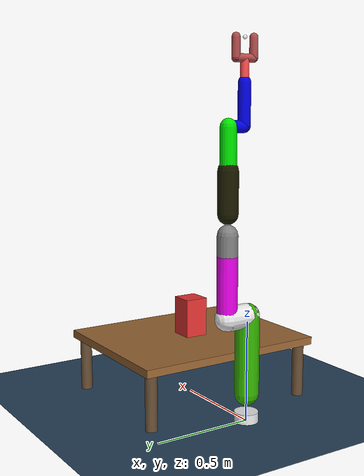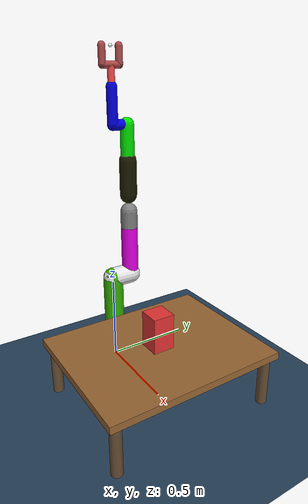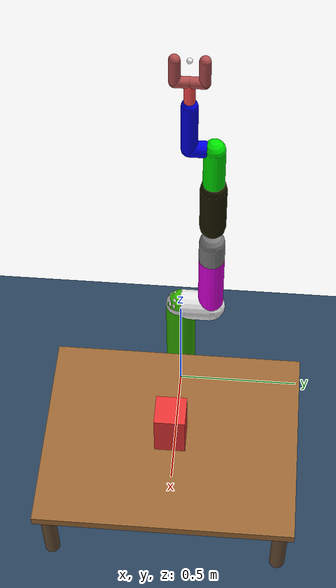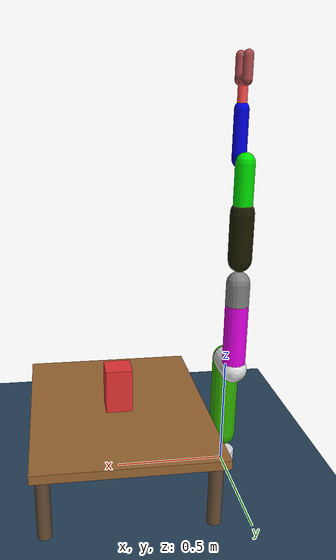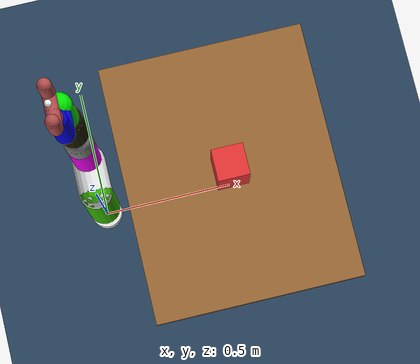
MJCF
<mujoco model="franka_planning">
	<compiler angle="radian"/>
  <option gravity="0 0 -9.81" timestep="0.002">
    <flag contact="enable"/>
  </option>

  <asset>
    <texture name="skybox" type="skybox" builtin="gradient" rgb1=".4 .6 .8" rgb2="0 0 0"
             width="800" height="800"/>
    <texture name="grid" type="2d" builtin="checker" rgb1=".1 .2 .3" rgb2=".2 .3 .4"
             width="300" height="300" mark="edge" markrgb=".2 .3 .4"/>
    <material name="grid" texture="grid" texrepeat="4 4" reflectance=".2"/>
  </asset>

  <worldbody>
    <light pos="0 0 3" dir="0 0 -1" directional="true"/>
    <geom name="floor" type="plane" size="2 2 0.1" material="grid"/>

    <!-- Table -->
    <body name="table" pos="0.5 0 0.3">
      <geom name="tabletop" type="box" size="0.4 0.5 0.02" rgba="0.6 0.4 0.2 1"
            mass="10" contype="1" conaffinity="1"/>
      <geom name="leg1" type="cylinder" fromto="-0.35 -0.45 -0.3 -0.35 -0.45 -0.02"
            size="0.03" rgba="0.4 0.3 0.2 1"/>
      <geom name="leg2" type="cylinder" fromto="0.35 -0.45 -0.3 0.35 -0.45 -0.02"
            size="0.03" rgba="0.4 0.3 0.2 1"/>
      <geom name="leg3" type="cylinder" fromto="-0.35 0.45 -0.3 -0.35 0.45 -0.02"
            size="0.03" rgba="0.4 0.3 0.2 1"/>
      <geom name="leg4" type="cylinder" fromto="0.35 0.45 -0.3 0.35 0.45 -0.02"
            size="0.03" rgba="0.4 0.3 0.2 1"/>
    </body>

    <!-- Obstacle box on the table -->
    <body name="obstacle" pos="0.5 0 0.42">
      <geom name="obstacle_box" type="box" size="0.06 0.06 0.1"
            rgba="0.9 0.2 0.2 1" mass="0.5" contype="1" conaffinity="1"/>
    </body>

    <!-- Franka Panda arm (simplified with primitives) -->
    <body name="link0" pos="0 0 0" euler="0 0 0">
      <geom name="link0_geom" type="cylinder" fromto="0 0 0 0 0 0.05" size="0.06" rgba="0.9 0.9 0.9 1" contype="1" conaffinity="1"/>
      <body name="link1" pos="0 0 0.333">
        <joint name="joint1" type="hinge" axis="0 0 1" range="-2.8973 2.8973" damping="1"/><!-- range="-2.8973 2.8973" -->
        <geom name="link1_geom" type="capsule" fromto="0 0 -0.19 0 0 0.2" size="0.06" rgba="0.2 0.7 0.0 1" contype="1" conaffinity="1"/>
        <body name="link2" pos="0 0 0.2">
			<joint name="joint2" type="hinge" axis="0 1 0" range="-1.7628 1.7628" damping="1"/> <!-- range="-1.7628 1.7628" -->
          <geom name="link2_geom_a" type="capsule" fromto="0 0 0 0 0.12 0" size="0.06" rgba="0.9 0.9 0.9 1" contype="1" conaffinity="1"/>
          <geom name="link2_geom_b" type="capsule" fromto="0 0.12 0 0.0 0.12 0.3" size="0.05" rgba="0.9 0.0 0.9 1" contype="1" conaffinity="1"/>
          <body name="link3" pos="0 0.12 0.3">
            <joint name="joint3" type="hinge" axis="0 0 1" range="-2.8973 2.8973" damping="1"/><!-- range="2.8973 2.8973" -->
            <geom name="link3_geom" type="capsule" fromto="0 0 0 0.0 0 0.1" size="0.05" rgba="0.5 0.5 0.5 1" contype="1" conaffinity="1"/>
            <body name="link4" pos="0.0 0 0.2">
				<joint name="joint4" type="hinge" axis="0 1 0" range="-3.0718 -0.3" damping="1"/> <!-- range="-3.0718 -0.3" -->
              <geom name="link4_geom_a" type="capsule" fromto="0 0 0 0.0 0.0 0.2" size="0.05" rgba="0.1 0.1 0.0 1" contype="1" conaffinity="1"/>
              <body name="link5" pos="0.0 0.0 0.2">
                <joint name="joint5" type="hinge" axis="0 0 1" range="-2.8973 2.8973" damping="1"/><!-- range="2.8973 2.8973" -->
                <geom name="link5_geom" type="capsule" fromto="0 0 0 0 0.0 0.2" size="0.04" rgba="0.0 0.9 0.0 1" contype="1" conaffinity="1"/>
                <body name="link6" pos="0 0.0 0.2">
                  <joint name="joint6" type="hinge" axis="0 1 0" range="-0.8973 0.8973" damping="1"/>
                  <geom name="link6_geom_a" type="capsule" fromto="0 0 0 0 -0.088 0" size="0.03" rgba="0.0 0.0 0.9 1" contype="1" conaffinity="1"/>
                  <geom name="link6_geom_b" type="capsule" fromto="0 -0.088 0 0 -0.088 0.2" size="0.03" rgba="0.0 0.0 0.9 1" contype="1" conaffinity="1"/>
                  <body name="link7" pos="0 -0.088 0.2">
                    <joint name="joint7" type="hinge" axis="0 0 1" range="-0.8973 0.8973" damping="1"/><!-- range="2.8973 2.8973" -->
                    <geom name="link7_geom_a" type="capsule" fromto="0 0 0 0 0 0.107" size="0.02" rgba="1.0 0.3 0.3 1" contype="1" conaffinity="1"/>
                    <geom name="link7_geom_b" type="capsule" fromto="0 -0.05 0.107 0 0.05 0.107" size="0.02" rgba="0.7 0.3 0.3 1" contype="1" conaffinity="1"/>
                    <geom name="link7_geom_c" type="capsule" fromto="0 -0.05 0.107 0 -0.05 0.2" size="0.02" rgba="0.7 0.3 0.3 1" contype="1" conaffinity="1"/>
                    <geom name="link7_geom_d" type="capsule" fromto="0 0.05 0.107 0 0.05 0.2" size="0.02" rgba="0.7 0.3 0.3 1" contype="1" conaffinity="1"/>
                    <!-- End-effector site for visualization -->
                    <site name="end_effector" pos="0 0 0.2" size="0.01" rgba="1 1 1 1"/>
                  </body>
                </body>
              </body>
            </body>
          </body>
        </body>
      </body>
    </body>
  </worldbody>

  <actuator>
    <motor joint="joint1" ctrlrange="-87 87"/>
    <motor joint="joint2" ctrlrange="-87 87"/>
    <motor joint="joint3" ctrlrange="-87 87"/>
    <motor joint="joint4" ctrlrange="-87 87"/>
    <motor joint="joint5" ctrlrange="-12 12"/>
    <motor joint="joint6" ctrlrange="-12 12"/>
    <motor joint="joint7" ctrlrange="-12 12"/>
  </actuator>
</mujoco>
